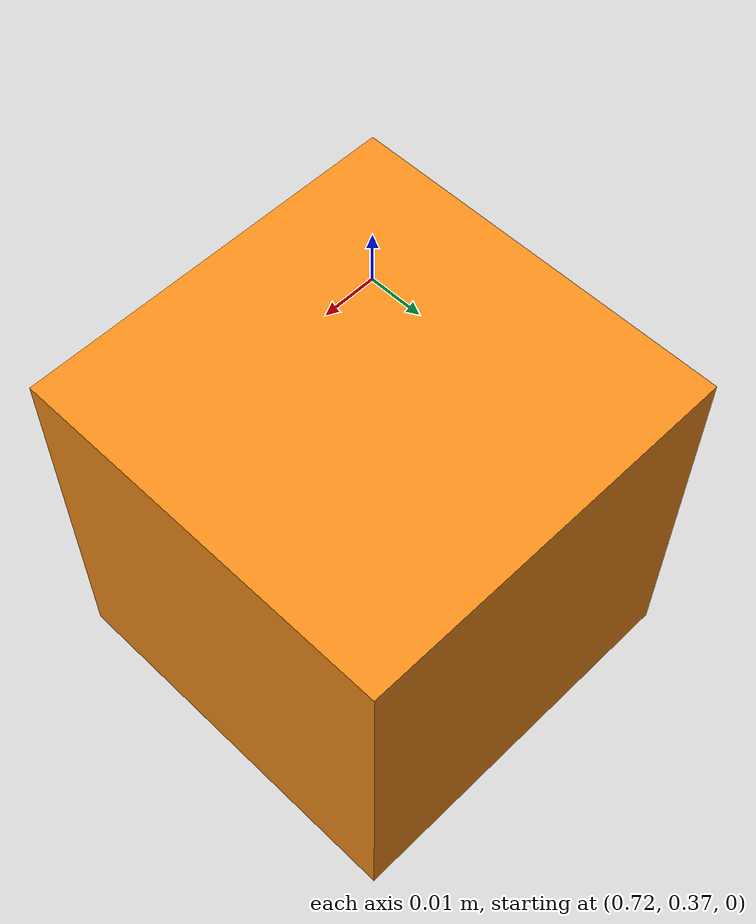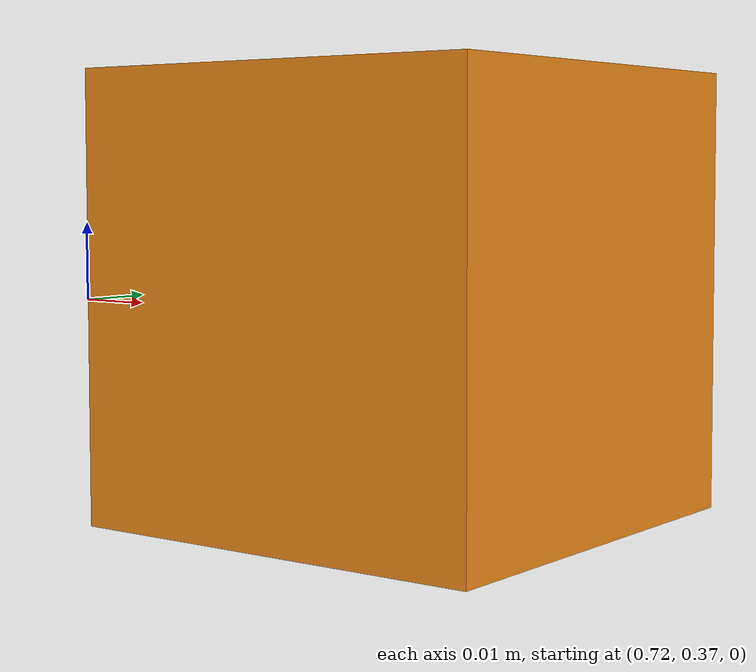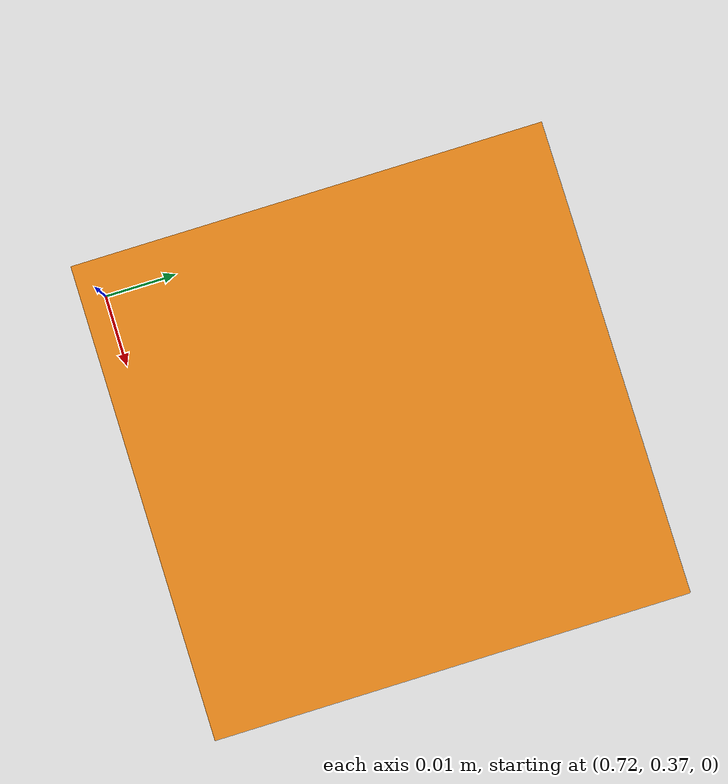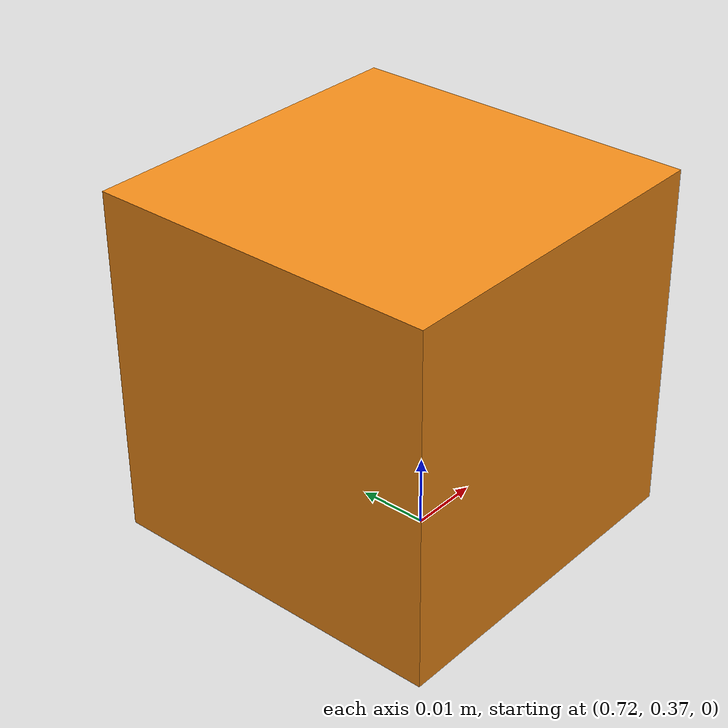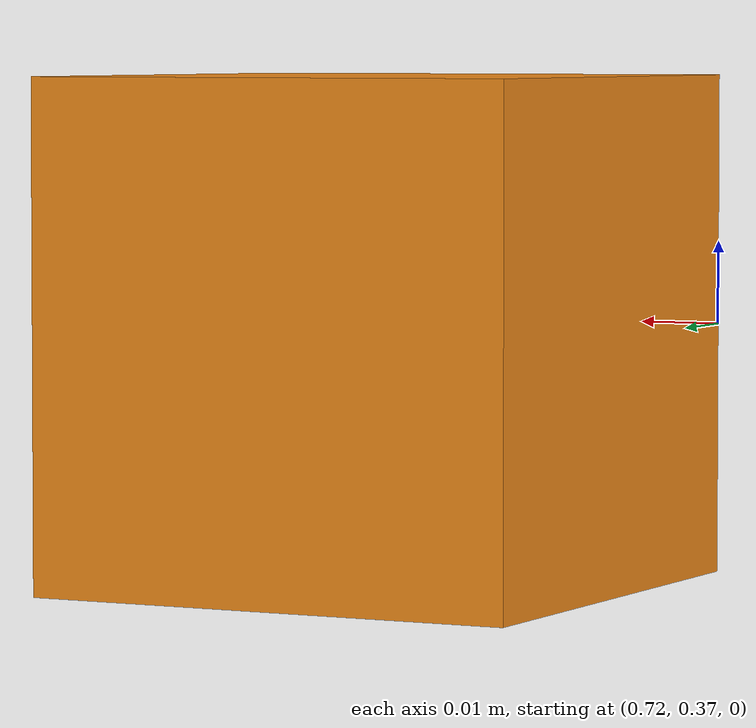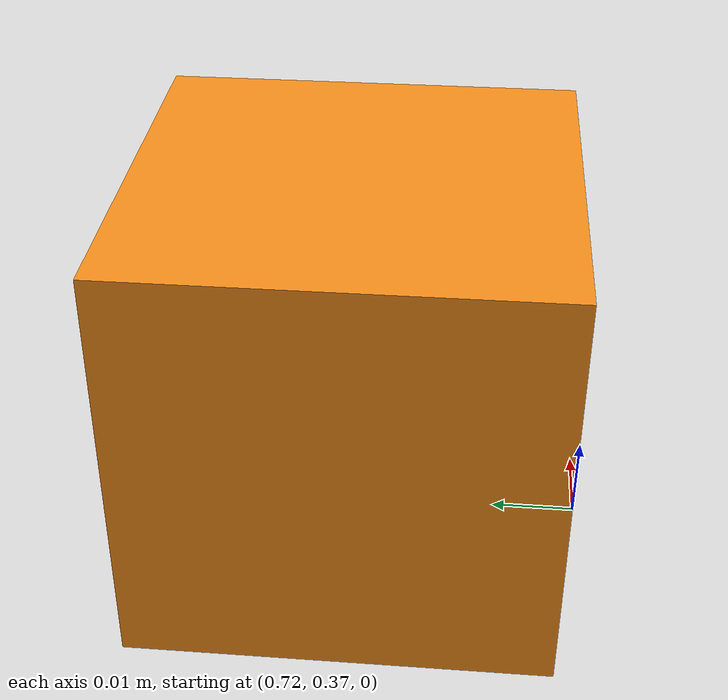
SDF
<?xml version="1.0"?>
<sdf version="1.5">
  <model name="object_box3">
    <static>false</static>
    <link name="link">
      <inertial>
        <pose>0.75 0.4 0 0 0 0</pose>
        <mass>0.5</mass>
      </inertial>
      <collision name="collision">
        <pose>0.75 0.4 0 0 0 0</pose>
        <geometry>
          <box>
            <size>0.06 0.06 0.06</size>
          </box>
        </geometry>
        <surface>
          <friction>
            <ode>
              <mu>100</mu>
              <mu2>50</mu2>
            </ode>
          </friction>
        </surface>
      </collision>
      <visual name="visual">
        <pose>0.75 0.4 0 0 0 0</pose>
        <geometry>
          <box>
            <size>0.06 0.06 0.06</size>
          </box>
        </geometry>
        <material>
          <script>
            <uri>file://media/materials/scripts/gazebo.material</uri>
            <name>Gazebo/Orange</name>
          </script>
        </material>
      </visual>
    </link>
  </model>
</sdf>
